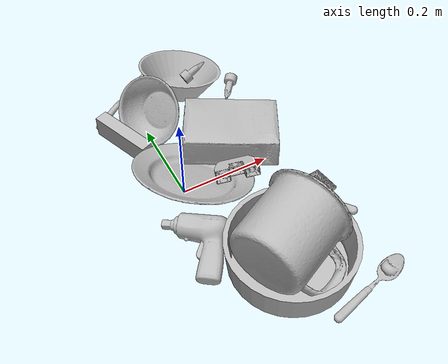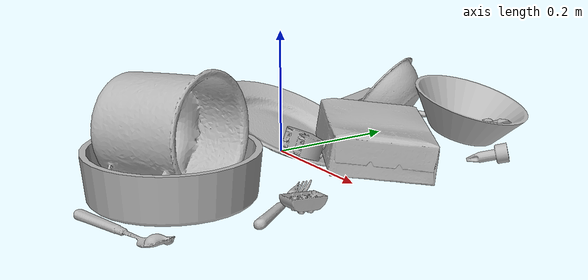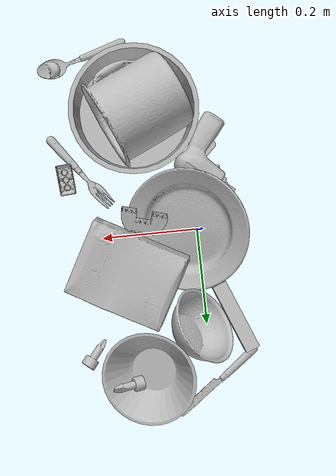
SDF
<sdf version="1.4">
  <world name="default">
    <light name="light1" type="point">
      <pose>0 0 1 0 0 0</pose>
      <diffuse>3 3 3 1</diffuse>
      <specular>3 3 3 1</specular>
    </light>
    <light name="light2" type="point">
      <pose>0 0.5 2 0 0 0</pose>
      <diffuse>1 1 1 1</diffuse>
      <specular>1 1 1 1</specular>
    </light>
    <light name="light3" type="point">
      <pose>0 0.5 2 0 0 0</pose>
      <diffuse>3 3 3 1</diffuse>
      <specular>3 3 3 1</specular>
    </light>
    <scene>
      <ambient>0.7 0.7 0.7</ambient>
    </scene>
    <model name="plate1">
      <link name="link_plate1">
        <collision name="default">
          <geometry>
            <mesh>
              <uri>model://plate/collision_meshes/collision.obj</uri>
              <scale>1.0 1.0 1.0</scale>
            </mesh>
          </geometry>
          <surface>
            <friction>
              <ode>
                <mu>0.5</mu>
                <mu2>0.5</mu2>
              </ode>
            </friction>
          <contact>
        <ode>
            <max_vel>0</max_vel>
            <min_depth>0.0001</min_depth>
            <kp>1e8</kp>
        </ode>
    </contact></surface>
        </collision>
        <visual name="default">
          <geometry>
            <mesh>
              <uri>model://plate/visual_meshes/visual.dae</uri>
              <scale>1.0 1.0 1.0</scale>
            </mesh>
          </geometry>
        </visual>
        <inertial>
          <mass>0.2627958059310913</mass>
          <pose>-0.0006044646725058556 0.00027825895813293755 -0.0010561998933553696 0.0022187866930069794 -0.0032254842153956703 0.4526099982878722</pose>
          <inertia>
            <ixx>0.0012293643</ixx>
            <iyy>0.0012176059</iyy>
            <izz>0.0024044532</izz>
            <ixy>0</ixy>
            <ixz>0</ixz>
            <iyz>0</iyz>
          </inertia>
        </inertial>
      </link>
      <pose>0.022498298436403275 -0.001898030168376863 0.044828034937381744 0.23107995151110325 -0.3376366091150739 -3.077271789972444</pose>
    </model>
    <model name="plate2">
      <link name="link_plate2">
        <collision name="default">
          <geometry>
            <mesh>
              <uri>model://pan_tefal/collision_meshes/collision.obj</uri>
              <scale>1.0 1.0 1.0</scale>
            </mesh>
          </geometry>
          <surface>
            <friction>
              <ode>
                <mu>0.5</mu>
                <mu2>0.5</mu2>
              </ode>
            </friction>
          <contact>
        <ode>
            <max_vel>0</max_vel>
            <min_depth>0.0001</min_depth>
            <kp>1e8</kp>
        </ode>
    </contact></surface>
        </collision>
        <visual name="default">
          <geometry>
            <mesh>
              <uri>model://pan_tefal/visual_meshes/visual.dae</uri>
              <scale>1.0 1.0 1.0</scale>
            </mesh>
          </geometry>
        </visual>
        <inertial>
          <mass>1.5012701749801636</mass>
          <pose>-0.00018001999706029892 3.279017983004451e-05 -0.00851493701338768 0.0008190300793188327 -0.0003301349064117064 -0.3318640955526003</pose>
          <inertia>
            <ixx>0.010363197</ixx>
            <iyy>0.010430007</iyy>
            <izz>0.019076647</izz>
            <ixy>0</ixy>
            <ixz>0</ixz>
            <iyz>0</iyz>
          </inertia>
        </inertial>
      </link>
      <pose>0.10728660970926285 -0.2558548152446747 0.03804999962449074 4.225090423968853e-07 -1.4656204170769453e-08 2.1024634186866207</pose>
    </model>
    <model name="bowl1">
      <link name="link_bowl1">
        <collision name="default">
          <geometry>
            <mesh>
              <uri>model://bowl_a/collision_meshes/collision.obj</uri>
              <scale>1.0 1.0 1.0</scale>
            </mesh>
          </geometry>
          <surface>
            <friction>
              <ode>
                <mu>0.5</mu>
                <mu2>0.5</mu2>
              </ode>
            </friction>
          <contact>
        <ode>
            <max_vel>0</max_vel>
            <min_depth>0.0001</min_depth>
            <kp>1e8</kp>
        </ode>
    </contact></surface>
        </collision>
        <visual name="default">
          <geometry>
            <mesh>
              <uri>model://bowl_a/visual_meshes/visual.dae</uri>
              <scale>1.0 1.0 1.0</scale>
            </mesh>
          </geometry>
        </visual>
        <inertial>
          <mass>0.25230005383491516</mass>
          <pose>0.0002786753175314516 4.731153603643179e-05 -0.001376529224216938 -0.000980537182568925 -0.0010938202432478224 -0.19123453155183487</pose>
          <inertia>
            <ixx>0.00071831</ixx>
            <iyy>0.0007227198</iyy>
            <izz>0.0012775414</izz>
            <ixy>0</ixy>
            <ixz>0</ixz>
            <iyz>0</iyz>
          </inertia>
        </inertial>
      </link>
      <pose>0.12566187977790833 0.28712931275367737 0.04447389766573906 -0.009938142932695971 -0.2787188740242391 -2.4855141463316914</pose>
    </model>
    <model name="bowl2">
      <link name="link_bowl2">
        <collision name="default">
          <geometry>
            <mesh>
              <uri>model://bowl/collision_meshes/collision.obj</uri>
              <scale>1.0 1.0 1.0</scale>
            </mesh>
          </geometry>
          <surface>
            <friction>
              <ode>
                <mu>0.5</mu>
                <mu2>0.5</mu2>
              </ode>
            </friction>
          <contact>
        <ode>
            <max_vel>0</max_vel>
            <min_depth>0.0001</min_depth>
            <kp>1e8</kp>
        </ode>
    </contact></surface>
        </collision>
        <visual name="default">
          <geometry>
            <mesh>
              <uri>model://bowl/visual_meshes/visual.dae</uri>
              <scale>1.0 1.0 1.0</scale>
            </mesh>
          </geometry>
        </visual>
        <inertial>
          <mass>0.09131127595901489</mass>
          <pose>0.00020444947585929185 -0.0010302107548341155 -0.0008042654953896999 -0.01576413996306862 0.014546728377416086 0.7140363947853973</pose>
          <inertia>
            <ixx>0.00020974927</ixx>
            <iyy>0.00020506265</iyy>
            <izz>0.00035287044</izz>
            <ixy>0</ixy>
            <ixz>0</ixz>
            <iyz>0</iyz>
          </inertia>
        </inertial>
      </link>
      <pose>0.024574315175414085 0.20405343174934387 0.055737145245075226 -0.40244387661582004 -0.8757096898613029 1.015203348089178</pose>
    </model>
    <model name="silverware1">
      <link name="link_silverware1">
        <collision name="default">
          <geometry>
            <mesh>
              <uri>model://knife/collision_meshes/collision.obj</uri>
              <scale>1.0 1.0 1.0</scale>
            </mesh>
          </geometry>
          <surface>
            <friction>
              <ode>
                <mu>0.5</mu>
                <mu2>0.5</mu2>
              </ode>
            </friction>
          <contact>
        <ode>
            <max_vel>0</max_vel>
            <min_depth>0.0001</min_depth>
            <kp>1e8</kp>
        </ode>
    </contact></surface>
        </collision>
        <visual name="default">
          <geometry>
            <mesh>
              <uri>model://knife/visual_meshes/visual.dae</uri>
              <scale>1.0 1.0 1.0</scale>
            </mesh>
          </geometry>
        </visual>
        <inertial>
          <mass>0.033491987735033035</mass>
          <pose>-0.023785259574651718 0.00152751209679991 5.062024501967244e-05 0.07305195921562309 0.017248415702697233 -0.007409822782391368</pose>
          <inertia>
            <ixx>9.5063825e-07</ixx>
            <iyy>0.00012867076</iyy>
            <izz>0.00012897696</izz>
            <ixy>0</ixy>
            <ixz>0</ixz>
            <iyz>0</iyz>
          </inertia>
        </inertial>
      </link>
      <pose>-0.011379051953554153 0.3198692202568054 0.008179550059139729 -0.31391306158821236 -0.007327286566419001 0.636873453651913</pose>
    </model>
    <model name="box1">
      <link name="link_box1">
        <collision name="default">
          <geometry>
            <mesh>
              <uri>model://cracker_box/collision_meshes/collision.obj</uri>
              <scale>1.0 1.0 1.0</scale>
            </mesh>
          </geometry>
          <surface>
            <friction>
              <ode>
                <mu>0.5</mu>
                <mu2>0.5</mu2>
              </ode>
            </friction>
          <contact>
        <ode>
            <max_vel>0</max_vel>
            <min_depth>0.0001</min_depth>
            <kp>1e8</kp>
        </ode>
    </contact></surface>
        </collision>
        <visual name="default">
          <geometry>
            <mesh>
              <uri>model://cracker_box/visual_meshes/visual.dae</uri>
              <scale>1.0 1.0 1.0</scale>
            </mesh>
          </geometry>
        </visual>
        <inertial>
          <mass>3.401942253112793</mass>
          <pose>0.0009464150061830878 0.00025434247800149024 -0.001702953246422112 -0.00031620765582640923 -0.011106486806186075 0.0025467954673401043</pose>
          <inertia>
            <ixx>0.008653021</ixx>
            <iyy>0.014287839</iyy>
            <izz>0.020390058</izz>
            <ixy>0</ixy>
            <ixz>0</ixz>
            <iyz>0</iyz>
          </inertia>
        </inertial>
      </link>
      <pose>0.15436582267284393 0.07674309611320496 0.04553811252117157 0.12186840899956451 -0.009879285658232305 2.643149364697685</pose>
    </model>
    <model name="box2">
      <link name="link_box2">
        <collision name="default">
          <geometry>
            <mesh>
              <uri>model://jenga/collision_meshes/collision.obj</uri>
              <scale>1.0 1.0 1.0</scale>
            </mesh>
          </geometry>
          <surface>
            <friction>
              <ode>
                <mu>0.5</mu>
                <mu2>0.5</mu2>
              </ode>
            </friction>
          <contact>
        <ode>
            <max_vel>0</max_vel>
            <min_depth>0.0001</min_depth>
            <kp>1e8</kp>
        </ode>
    </contact></surface>
        </collision>
        <visual name="default">
          <geometry>
            <mesh>
              <uri>model://jenga/visual_meshes/visual.dae</uri>
              <scale>1.0 1.0 1.0</scale>
            </mesh>
          </geometry>
        </visual>
        <inertial>
          <mass>0.15917322039604187</mass>
          <pose>-2.502856091268768e-07 -0.00010250010382151231 -4.0923405322246253e-05 0.0 -7.34215461761844e-07 0.0</pose>
          <inertia>
            <ixx>4.4047094e-05</ixx>
            <iyy>0.0002984619</iyy>
            <izz>0.00031863348</izz>
            <ixy>0</ixy>
            <ixz>0</ixz>
            <iyz>0</iyz>
          </inertia>
        </inertial>
      </link>
      <pose>-0.058532364666461945 0.18653695285320282 0.02449694834649563 -1.5775218870063232 1.322796725947999e-06 -1.1904062750232294</pose>
    </model>
    <model name="cup1">
      <link name="link_cup1">
        <collision name="default">
          <geometry>
            <mesh>
              <uri>model://mug/collision_meshes/collision.obj</uri>
              <scale>2.0 2.0 2.0</scale>
            </mesh>
          </geometry>
          <surface>
            <friction>
              <ode>
                <mu>0.5</mu>
                <mu2>0.5</mu2>
              </ode>
            </friction>
          <contact>
        <ode>
            <max_vel>0</max_vel>
            <min_depth>0.0001</min_depth>
            <kp>1e8</kp>
        </ode>
    </contact></surface>
        </collision>
        <visual name="default">
          <geometry>
            <mesh>
              <uri>model://mug/visual_meshes/visual.dae</uri>
              <scale>2.0 2.0 2.0</scale>
            </mesh>
          </geometry>
        </visual>
        <inertial>
          <mass>1.8939067125320435</mass>
          <pose>0.019143342971801758 0.0016286505851894617 -0.02189466543495655 -0.12983139039190478 0.08737723243087561 0.05507286357129759</pose>
          <inertia>
            <ixx>0.0075250226</ixx>
            <iyy>0.008405008</iyy>
            <izz>0.009720505</izz>
            <ixy>0</ixy>
            <ixz>0</ixz>
            <iyz>0</iyz>
          </inertia>
        </inertial>
      </link>
      <pose>0.10305099189281464 -0.2710549533367157 0.08508092164993286 1.496871174178795 -0.6116882535464008 2.0479763189583875</pose>
    </model>
    <model name="silverware2">
      <link name="link_silverware2">
        <collision name="default">
          <geometry>
            <mesh>
              <uri>model://fork/collision_meshes/collision.obj</uri>
              <scale>1.0 1.0 1.0</scale>
            </mesh>
          </geometry>
          <surface>
            <friction>
              <ode>
                <mu>0.5</mu>
                <mu2>0.5</mu2>
              </ode>
            </friction>
          <contact>
        <ode>
            <max_vel>0</max_vel>
            <min_depth>0.0001</min_depth>
            <kp>1e8</kp>
        </ode>
    </contact></surface>
        </collision>
        <visual name="default">
          <geometry>
            <mesh>
              <uri>model://fork/visual_meshes/visual.dae</uri>
              <scale>1.0 1.0 1.0</scale>
            </mesh>
          </geometry>
        </visual>
        <inertial>
          <mass>0.01107261423021555</mass>
          <pose>-0.02957005240023136 0.00046588238910771906 0.0003218861820641905 -0.01355183639158028 -0.010977839693189282 0.014453902572364752</pose>
          <inertia>
            <ixx>3.8815773e-07</ixx>
            <iyy>2.8907412e-05</iyy>
            <izz>2.9081024e-05</izz>
            <ixy>0</ixy>
            <ixz>0</ixz>
            <iyz>0</iyz>
          </inertia>
        </inertial>
      </link>
      <pose>0.23424161970615387 -0.14497366547584534 0.005702003836631775 -0.17972148385961317 0.025084565442221627 2.211361639804309</pose>
    </model>
    <model name="silverware3">
      <link name="link_silverware3">
        <collision name="default">
          <geometry>
            <mesh>
              <uri>model://spoon/collision_meshes/collision.obj</uri>
              <scale>1.0 1.0 1.0</scale>
            </mesh>
          </geometry>
          <surface>
            <friction>
              <ode>
                <mu>0.5</mu>
                <mu2>0.5</mu2>
              </ode>
            </friction>
          <contact>
        <ode>
            <max_vel>0</max_vel>
            <min_depth>0.0001</min_depth>
            <kp>1e8</kp>
        </ode>
    </contact></surface>
        </collision>
        <visual name="default">
          <geometry>
            <mesh>
              <uri>model://spoon/visual_meshes/visual.dae</uri>
              <scale>1.0 1.0 1.0</scale>
            </mesh>
          </geometry>
        </visual>
        <inertial>
          <mass>0.03720218688249588</mass>
          <pose>-0.005526323337107897 -0.00160341733135283 -0.0007271655485965312 0.035216710753312216 -0.03906584126265578 0.006150608185168733</pose>
          <inertia>
            <ixx>2.0692462e-06</ixx>
            <iyy>0.00014155307</iyy>
            <izz>0.00014257352</izz>
            <ixy>0</ixy>
            <ixz>0</ixz>
            <iyz>0</iyz>
          </inertia>
        </inertial>
      </link>
      <pose>0.20579318702220917 -0.38075345754623413 0.008385262452065945 0.006731726906067016 0.026892994649958445 0.263437705531324</pose>
    </model>
    <model name="toy1">
      <link name="link_toy1">
        <collision name="default">
          <geometry>
            <mesh>
              <uri>model://e_toy_airplane/collision_meshes/collision.obj</uri>
              <scale>1.0 1.0 1.0</scale>
            </mesh>
          </geometry>
          <surface>
            <friction>
              <ode>
                <mu>0.5</mu>
                <mu2>0.5</mu2>
              </ode>
            </friction>
          <contact>
        <ode>
            <max_vel>0</max_vel>
            <min_depth>0.0001</min_depth>
            <kp>1e8</kp>
        </ode>
    </contact></surface>
        </collision>
        <visual name="default">
          <geometry>
            <mesh>
              <uri>model://e_toy_airplane/visual_meshes/visual.dae</uri>
              <scale>1.0 1.0 1.0</scale>
            </mesh>
          </geometry>
        </visual>
        <inertial>
          <mass>0.02491888962686062</mass>
          <pose>0.00011740486661437899 -2.248287455586251e-05 -0.011187204159796238 0.00551850201937057 0.009228289896812953 0.1504152046419029</pose>
          <inertia>
            <ixx>7.60553e-06</ixx>
            <iyy>7.52773e-06</iyy>
            <izz>2.2857607e-06</izz>
            <ixy>0</ixy>
            <ixz>0</ixz>
            <iyz>0</iyz>
          </inertia>
        </inertial>
      </link>
      <pose>0.1760203242301941 0.3083903193473816 0.03577379137277603 -1.0221473796506766 0.6589076433508723 -1.1197146184527904</pose>
    </model>
    <model name="toy2">
      <link name="link_toy2">
        <collision name="default">
          <geometry>
            <mesh>
              <uri>model://e_lego_duplo/collision_meshes/collision.obj</uri>
              <scale>1.0 1.0 1.0</scale>
            </mesh>
          </geometry>
          <surface>
            <friction>
              <ode>
                <mu>0.5</mu>
                <mu2>0.5</mu2>
              </ode>
            </friction>
          <contact>
        <ode>
            <max_vel>0</max_vel>
            <min_depth>0.0001</min_depth>
            <kp>1e8</kp>
        </ode>
    </contact></surface>
        </collision>
        <visual name="default">
          <geometry>
            <mesh>
              <uri>model://e_lego_duplo/visual_meshes/visual.dae</uri>
              <scale>1.0 1.0 1.0</scale>
            </mesh>
          </geometry>
        </visual>
        <inertial>
          <mass>0.08635181933641434</mass>
          <pose>0.00032560451654717326 0.0002348542184336111 0.0019521444337442517 -0.022567902749969417 -6.824781923482006e-05 -0.00762515629770681</pose>
          <inertia>
            <ixx>1.8007207e-05</ixx>
            <iyy>7.390619e-05</iyy>
            <izz>7.1969785e-05</izz>
            <ixy>0</ixy>
            <ixz>0</ixz>
            <iyz>0</iyz>
          </inertia>
        </inertial>
      </link>
      <pose>0.11217069625854492 -0.02640675939619541 0.04342799633741379 1.9286458655220369 0.08410032356684063 2.866584224792894</pose>
    </model>
    <model name="toy3">
      <link name="link_toy3">
        <collision name="default">
          <geometry>
            <mesh>
              <uri>model://d_toy_airplane/collision_meshes/collision.obj</uri>
              <scale>1.0 1.0 1.0</scale>
            </mesh>
          </geometry>
          <surface>
            <friction>
              <ode>
                <mu>0.5</mu>
                <mu2>0.5</mu2>
              </ode>
            </friction>
          <contact>
        <ode>
            <max_vel>0</max_vel>
            <min_depth>0.0001</min_depth>
            <kp>1e8</kp>
        </ode>
    </contact></surface>
        </collision>
        <visual name="default">
          <geometry>
            <mesh>
              <uri>model://d_toy_airplane/visual_meshes/visual.dae</uri>
              <scale>1.0 1.0 1.0</scale>
            </mesh>
          </geometry>
        </visual>
        <inertial>
          <mass>0.01398532185703516</mass>
          <pose>9.410311031388119e-05 -5.809316644445062e-05 -0.011728093959391117 0.00026700916858413164 0.004678987951971881 0.5194708538811167</pose>
          <inertia>
            <ixx>4.1925277e-06</ixx>
            <iyy>4.1956896e-06</iyy>
            <izz>1.2657512e-06</izz>
            <ixy>0</ixy>
            <ixz>0</ixz>
            <iyz>0</iyz>
          </inertia>
        </inertial>
      </link>
      <pose>0.2365248054265976 0.2371177077293396 0.011234664358198643 1.7944113640120563 -0.197071718213579 -0.7394581845890548</pose>
    </model>
    <model name="toy4">
      <link name="link_toy4">
        <collision name="default">
          <geometry>
            <mesh>
              <uri>model://b_toy_airplane/collision_meshes/collision.obj</uri>
              <scale>1.0 1.0 1.0</scale>
            </mesh>
          </geometry>
          <surface>
            <friction>
              <ode>
                <mu>0.5</mu>
                <mu2>0.5</mu2>
              </ode>
            </friction>
          <contact>
        <ode>
            <max_vel>0</max_vel>
            <min_depth>0.0001</min_depth>
            <kp>1e8</kp>
        </ode>
    </contact></surface>
        </collision>
        <visual name="default">
          <geometry>
            <mesh>
              <uri>model://b_toy_airplane/visual_meshes/visual.dae</uri>
              <scale>1.0 1.0 1.0</scale>
            </mesh>
          </geometry>
        </visual>
        <inertial>
          <mass>0.39888885617256165</mass>
          <pose>0.00508136348798871 0.0040155863389372826 0.009543065913021564 -0.04001810285123905 -0.040221831504284974 -0.560150355465512</pose>
          <inertia>
            <ixx>0.00074054446</ixx>
            <iyy>0.00029600295</iyy>
            <izz>0.00092131115</izz>
            <ixy>0</ixy>
            <ixz>0</ixz>
            <iyz>0</iyz>
          </inertia>
        </inertial>
      </link>
      <pose>-0.023851623758673668 -0.14980021119117737 0.0356890931725502 3.0695708777720094 0.07405946507322213 2.4858037840883878</pose>
    </model>
    <model name="toy5">
      <link name="link_toy5">
        <collision name="default">
          <geometry>
            <mesh>
              <uri>model://a_lego_duplo/collision_meshes/collision.obj</uri>
              <scale>1.0 1.0 1.0</scale>
            </mesh>
          </geometry>
          <surface>
            <friction>
              <ode>
                <mu>0.5</mu>
                <mu2>0.5</mu2>
              </ode>
            </friction>
          <contact>
        <ode>
            <max_vel>0</max_vel>
            <min_depth>0.0001</min_depth>
            <kp>1e8</kp>
        </ode>
    </contact></surface>
        </collision>
        <visual name="default">
          <geometry>
            <mesh>
              <uri>model://a_lego_duplo/visual_meshes/visual.dae</uri>
              <scale>1.0 1.0 1.0</scale>
            </mesh>
          </geometry>
        </visual>
        <inertial>
          <mass>0.014756478369235992</mass>
          <pose>-0.00011337623436702415 0.00018517495482228696 0.00036926049506291747 -0.01411700810413075 -0.00012565743579302476 6.142605902116464e-05</pose>
          <inertia>
            <ixx>1.8918981e-06</ixx>
            <iyy>4.238266e-06</iyy>
            <izz>5.250033e-06</izz>
            <ixy>0</ixy>
            <ixz>0</ixz>
            <iyz>0</iyz>
          </inertia>
        </inertial>
      </link>
      <pose>0.2633935511112213 -0.13121603429317474 0.013285225257277489 -3.138199432340291 0.11978988010697048 1.6423962996954948</pose>
    </model>
  <physics type="ode">
      <max_contacts>50</max_contacts>
      <ode>
        <solver>
          <type>quick</type>
          <iters>75</iters>
        </solver>
        <constraints>
          <contact_max_correcting_vel>0</contact_max_correcting_vel>
          <contact_surface_layer>0</contact_surface_layer>
        </constraints>
      </ode>
    </physics></world>
</sdf>
